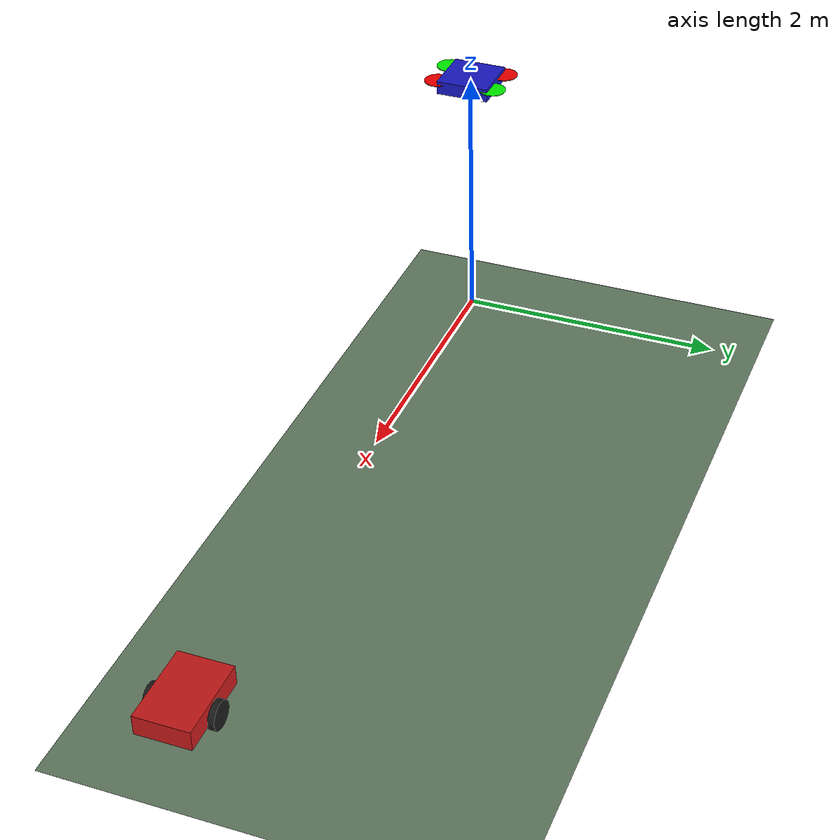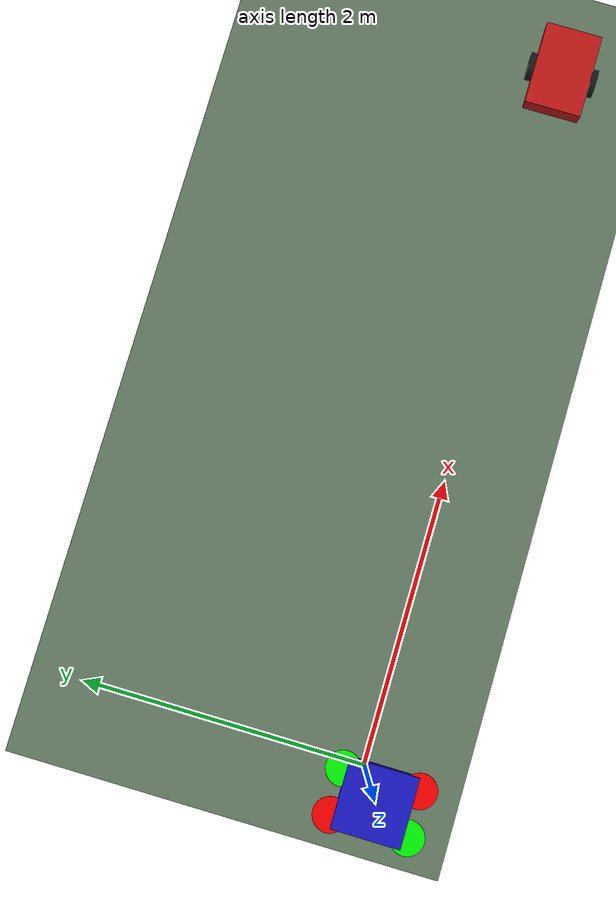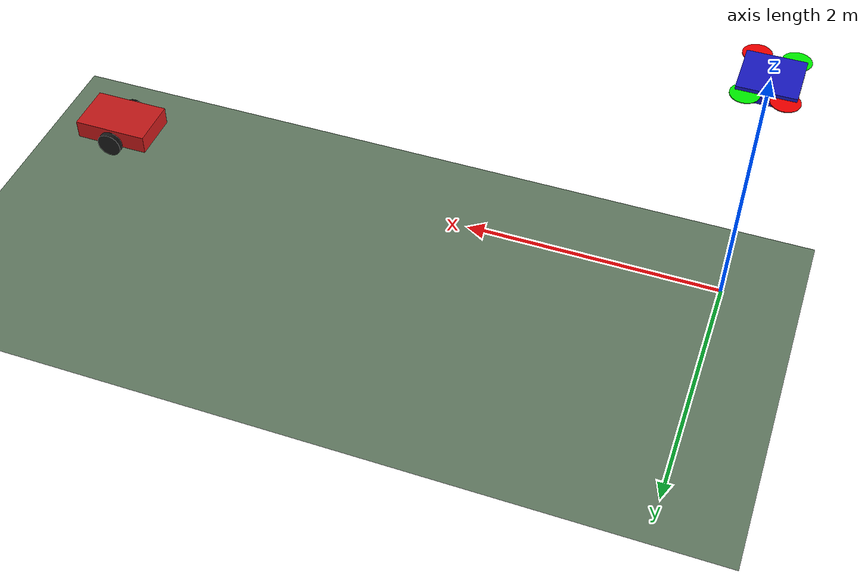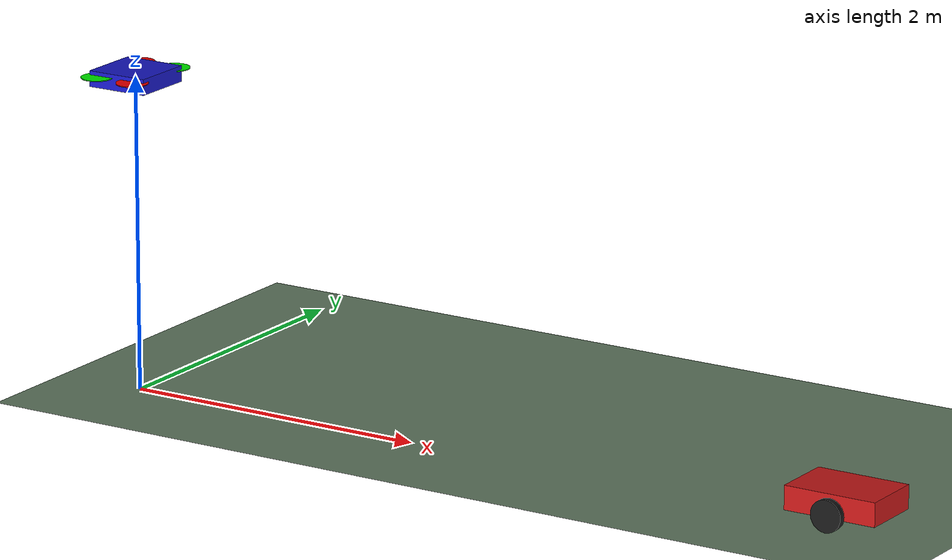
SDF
<?xml version="1.0" ?>
<sdf version="1.9">
  <world name="drone_tracker">

    <!-- Physics engine -->
    <physics name="1ms" type="ignored">
      <max_step_size>0.001</max_step_size>
      <real_time_factor>1.0</real_time_factor>
    </physics>

    <!-- Required plugins -->
    <plugin filename="gz-sim-physics-system"
            name="gz::sim::systems::Physics"/>
    <plugin filename="gz-sim-sensors-system"
            name="gz::sim::systems::Sensors">
      <render_engine>ogre</render_engine>
    </plugin>
    <plugin filename="gz-sim-scene-broadcaster-system"
            name="gz::sim::systems::SceneBroadcaster"/>
    <plugin filename="gz-sim-user-commands-system"
            name="gz::sim::systems::UserCommands"/>

    <!-- Sunlight -->
    <light name="sun" type="directional">
      <cast_shadows>true</cast_shadows>
      <pose>0 0 10 0 0 0</pose>
      <diffuse>0.8 0.8 0.8 1</diffuse>
      <specular>0.2 0.2 0.2 1</specular>
      <direction>-0.5 0.1 -0.9</direction>
    </light>

    <!-- Flat ground plane -->
    <model name="ground_plane">
      <static>true</static>
      <link name="link">
        <collision name="collision">
          <geometry><plane><normal>0 0 1</normal><size>100 100</size></plane></geometry>
        </collision>
        <visual name="visual">
          <geometry><plane><normal>0 0 1</normal><size>100 100</size></plane></geometry>
          <material>
            <ambient>0.4 0.5 0.4 1</ambient>
            <diffuse>0.4 0.5 0.4 1</diffuse>
          </material>
        </visual>
      </link>
    </model>

    <!-- Include the drone (spawned 2m above ground) -->
    <include>
      <uri>model://quadrotor</uri>
      <pose>0 0 2 0 0 0</pose>
    </include>

    <!-- Include the ground vehicle -->
    <include>
      <uri>model://ground_vehicle</uri>
      <pose>5 0 0.2 0 0 0</pose>
    </include>

  </world>
</sdf>

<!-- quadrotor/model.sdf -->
<sdf version="1.9">
  <model name="quadrotor">
    <self_collide>false</self_collide>

    <!-- ===== Main Body ===== -->
    <link name="base_link">
      <inertial>
        <mass>1.5</mass>
        <inertia>
          <ixx>0.029125</ixx><iyy>0.029125</iyy><izz>0.055225</izz>
          <ixy>0</ixy><ixz>0</ixz><iyz>0</iyz>
        </inertia>
      </inertial>
      <visual name="body_visual">
        <geometry><box><size>0.4 0.4 0.1</size></box></geometry>
        <material><ambient>0.1 0.1 0.8 1</ambient><diffuse>0.1 0.1 0.8 1</diffuse></material>
      </visual>
      <collision name="body_collision">
        <geometry><box><size>0.4 0.4 0.1</size></box></geometry>
      </collision>

      <!-- Downward-facing camera -->
      <sensor name="camera" type="camera">
        <pose>0 0 -0.06 0 1.5708 0</pose>
        <camera>
          <horizontal_fov>1.047</horizontal_fov>
          <image><width>640</width><height>480</height><format>R8G8B8</format></image>
          <clip><near>0.1</near><far>100</far></clip>
        </camera>
        <always_on>1</always_on>
        <update_rate>30</update_rate>
        <visualize>true</visualize>
        <topic>/drone/camera</topic>
      </sensor>
    </link>

    <!-- ===== Rotor 0: Front-Left (CCW) ===== -->
    <link name="rotor_0">
      <pose>0.13 0.22 0.023 0 0 0</pose>
      <inertial>
        <mass>0.025</mass>
        <inertia><ixx>9.75e-7</ixx><iyy>4.17e-5</iyy><izz>4.26e-5</izz></inertia>
      </inertial>
      <visual name="rotor_0_visual">
        <geometry><cylinder><radius>0.1</radius><length>0.005</length></cylinder></geometry>
        <material><ambient>0 1 0 1</ambient><diffuse>0 1 0 1</diffuse></material>
      </visual>
      <collision name="rotor_0_collision">
        <geometry><cylinder><radius>0.1</radius><length>0.005</length></cylinder></geometry>
      </collision>
    </link>
    <joint name="rotor_0_joint" type="revolute">
      <parent>base_link</parent><child>rotor_0</child>
      <axis>
        <xyz>0 0 1</xyz>
        <limit><lower>-1e+16</lower><upper>1e+16</upper></limit>
        <dynamics><damping>0.004</damping></dynamics>
      </axis>
    </joint>

    <!-- ===== Rotor 1: Back-Right (CCW) ===== -->
    <link name="rotor_1">
      <pose>-0.13 -0.22 0.023 0 0 0</pose>
      <inertial>
        <mass>0.025</mass>
        <inertia><ixx>9.75e-7</ixx><iyy>4.17e-5</iyy><izz>4.26e-5</izz></inertia>
      </inertial>
      <visual name="rotor_1_visual">
        <geometry><cylinder><radius>0.1</radius><length>0.005</length></cylinder></geometry>
        <material><ambient>0 1 0 1</ambient><diffuse>0 1 0 1</diffuse></material>
      </visual>
      <collision name="rotor_1_collision">
        <geometry><cylinder><radius>0.1</radius><length>0.005</length></cylinder></geometry>
      </collision>
    </link>
    <joint name="rotor_1_joint" type="revolute">
      <parent>base_link</parent><child>rotor_1</child>
      <axis>
        <xyz>0 0 1</xyz>
        <limit><lower>-1e+16</lower><upper>1e+16</upper></limit>
        <dynamics><damping>0.004</damping></dynamics>
      </axis>
    </joint>

    <!-- ===== Rotor 2: Front-Right (CW) ===== -->
    <link name="rotor_2">
      <pose>0.13 -0.22 0.023 0 0 0</pose>
      <inertial>
        <mass>0.025</mass>
        <inertia><ixx>9.75e-7</ixx><iyy>4.17e-5</iyy><izz>4.26e-5</izz></inertia>
      </inertial>
      <visual name="rotor_2_visual">
        <geometry><cylinder><radius>0.1</radius><length>0.005</length></cylinder></geometry>
        <material><ambient>1 0 0 1</ambient><diffuse>1 0 0 1</diffuse></material>
      </visual>
      <collision name="rotor_2_collision">
        <geometry><cylinder><radius>0.1</radius><length>0.005</length></cylinder></geometry>
      </collision>
    </link>
    <joint name="rotor_2_joint" type="revolute">
      <parent>base_link</parent><child>rotor_2</child>
      <axis>
        <xyz>0 0 1</xyz>
        <limit><lower>-1e+16</lower><upper>1e+16</upper></limit>
        <dynamics><damping>0.004</damping></dynamics>
      </axis>
    </joint>

    <!-- ===== Rotor 3: Back-Left (CW) ===== -->
    <link name="rotor_3">
      <pose>-0.13 0.22 0.023 0 0 0</pose>
      <inertial>
        <mass>0.025</mass>
        <inertia><ixx>9.75e-7</ixx><iyy>4.17e-5</iyy><izz>4.26e-5</izz></inertia>
      </inertial>
      <visual name="rotor_3_visual">
        <geometry><cylinder><radius>0.1</radius><length>0.005</length></cylinder></geometry>
        <material><ambient>1 0 0 1</ambient><diffuse>1 0 0 1</diffuse></material>
      </visual>
      <collision name="rotor_3_collision">
        <geometry><cylinder><radius>0.1</radius><length>0.005</length></cylinder></geometry>
      </collision>
    </link>
    <joint name="rotor_3_joint" type="revolute">
      <parent>base_link</parent><child>rotor_3</child>
      <axis>
        <xyz>0 0 1</xyz>
        <limit><lower>-1e+16</lower><upper>1e+16</upper></limit>
        <dynamics><damping>0.004</damping></dynamics>
      </axis>
    </joint>

    <!-- ===== Motor Model Plugins (one per rotor) ===== -->
    <plugin filename="gz-sim-multicopter-motor-model-system"
            name="gz::sim::systems::MulticopterMotorModel">
      <robotNamespace>drone</robotNamespace>
      <jointName>rotor_0_joint</jointName>
      <linkName>rotor_0</linkName>
      <turningDirection>ccw</turningDirection>
      <timeConstantUp>0.0125</timeConstantUp>
      <timeConstantDown>0.025</timeConstantDown>
      <maxRotVelocity>800</maxRotVelocity>
      <motorConstant>8.54858e-06</motorConstant>
      <momentConstant>0.06</momentConstant>
      <commandSubTopic>command/motor_speed</commandSubTopic>
      <motorNumber>0</motorNumber>
      <rotorDragCoefficient>8.06428e-05</rotorDragCoefficient>
      <rollingMomentCoefficient>1e-06</rollingMomentCoefficient>
      <motorSpeedPubTopic>motor_speed/0</motorSpeedPubTopic>
      <rotorVelocitySlowdownSim>10</rotorVelocitySlowdownSim>
    </plugin>

    <plugin filename="gz-sim-multicopter-motor-model-system"
            name="gz::sim::systems::MulticopterMotorModel">
      <robotNamespace>drone</robotNamespace>
      <jointName>rotor_1_joint</jointName>
      <linkName>rotor_1</linkName>
      <turningDirection>ccw</turningDirection>
      <timeConstantUp>0.0125</timeConstantUp>
      <timeConstantDown>0.025</timeConstantDown>
      <maxRotVelocity>800</maxRotVelocity>
      <motorConstant>8.54858e-06</motorConstant>
      <momentConstant>0.06</momentConstant>
      <commandSubTopic>command/motor_speed</commandSubTopic>
      <motorNumber>1</motorNumber>
      <rotorDragCoefficient>8.06428e-05</rotorDragCoefficient>
      <rollingMomentCoefficient>1e-06</rollingMomentCoefficient>
      <motorSpeedPubTopic>motor_speed/1</motorSpeedPubTopic>
      <rotorVelocitySlowdownSim>10</rotorVelocitySlowdownSim>
    </plugin>

    <plugin filename="gz-sim-multicopter-motor-model-system"
            name="gz::sim::systems::MulticopterMotorModel">
      <robotNamespace>drone</robotNamespace>
      <jointName>rotor_2_joint</jointName>
      <linkName>rotor_2</linkName>
      <turningDirection>cw</turningDirection>
      <timeConstantUp>0.0125</timeConstantUp>
      <timeConstantDown>0.025</timeConstantDown>
      <maxRotVelocity>800</maxRotVelocity>
      <motorConstant>8.54858e-06</motorConstant>
      <momentConstant>0.06</momentConstant>
      <commandSubTopic>command/motor_speed</commandSubTopic>
      <motorNumber>2</motorNumber>
      <rotorDragCoefficient>8.06428e-05</rotorDragCoefficient>
      <rollingMomentCoefficient>1e-06</rollingMomentCoefficient>
      <motorSpeedPubTopic>motor_speed/2</motorSpeedPubTopic>
      <rotorVelocitySlowdownSim>10</rotorVelocitySlowdownSim>
    </plugin>

    <plugin filename="gz-sim-multicopter-motor-model-system"
            name="gz::sim::systems::MulticopterMotorModel">
      <robotNamespace>drone</robotNamespace>
      <jointName>rotor_3_joint</jointName>
      <linkName>rotor_3</linkName>
      <turningDirection>cw</turningDirection>
      <timeConstantUp>0.0125</timeConstantUp>
      <timeConstantDown>0.025</timeConstantDown>
      <maxRotVelocity>800</maxRotVelocity>
      <motorConstant>8.54858e-06</motorConstant>
      <momentConstant>0.06</momentConstant>
      <commandSubTopic>command/motor_speed</commandSubTopic>
      <motorNumber>3</motorNumber>
      <rotorDragCoefficient>8.06428e-05</rotorDragCoefficient>
      <rollingMomentCoefficient>1e-06</rollingMomentCoefficient>
      <motorSpeedPubTopic>motor_speed/3</motorSpeedPubTopic>
      <rotorVelocitySlowdownSim>10</rotorVelocitySlowdownSim>
    </plugin>

    <!-- ===== Velocity Controller (with full rotorConfiguration) ===== -->
    <plugin filename="gz-sim-multicopter-control-system"
            name="gz::sim::systems::MulticopterVelocityControl">
      <robotNamespace>drone</robotNamespace>
      <commandSubTopic>cmd_vel</commandSubTopic>
      <enableSubTopic>enable</enableSubTopic>
      <comLinkName>base_link</comLinkName>
      <velocityGain>2.7 2.7 2.7</velocityGain>
      <attitudeGain>2 3 0.15</attitudeGain>
      <angularRateGain>0.4 0.52 0.18</angularRateGain>
      <maximumLinearAcceleration>2 2 2</maximumLinearAcceleration>
      <rotorConfiguration>
        <rotor>
          <jointName>rotor_0_joint</jointName>
          <forceConstant>8.54858e-06</forceConstant>
          <momentConstant>0.06</momentConstant>
          <direction>1</direction>
        </rotor>
        <rotor>
          <jointName>rotor_1_joint</jointName>
          <forceConstant>8.54858e-06</forceConstant>
          <momentConstant>0.06</momentConstant>
          <direction>1</direction>
        </rotor>
        <rotor>
          <jointName>rotor_2_joint</jointName>
          <forceConstant>8.54858e-06</forceConstant>
          <momentConstant>0.06</momentConstant>
          <direction>-1</direction>
        </rotor>
        <rotor>
          <jointName>rotor_3_joint</jointName>
          <forceConstant>8.54858e-06</forceConstant>
          <momentConstant>0.06</momentConstant>
          <direction>-1</direction>
        </rotor>
      </rotorConfiguration>
    </plugin>

  </model>
</sdf>

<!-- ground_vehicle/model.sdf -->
<sdf version="1.9">
  <model name="ground_vehicle">

    <link name="chassis">
      <inertial>
        <mass>5.0</mass>
        <inertia><ixx>0.13</ixx><iyy>0.30</iyy><izz>0.43</izz></inertia>
      </inertial>
      <visual name="chassis_visual">
        <geometry><box><size>0.6 0.4 0.15</size></box></geometry>
        <material><ambient>0.8 0.1 0.1 1</ambient><diffuse>0.8 0.1 0.1 1</diffuse></material>
      </visual>
      <collision name="chassis_collision">
        <geometry><box><size>0.6 0.4 0.15</size></box></geometry>
      </collision>
    </link>

    <!-- Left Wheel -->
    <link name="left_wheel">
      <pose>0 0.22 -0.05 -1.5707 0 0</pose>
      <inertial><mass>1.0</mass><inertia><ixx>0.043</ixx><iyy>0.043</iyy><izz>0.08</izz></inertia></inertial>
      <visual name="visual"><geometry><cylinder><radius>0.1</radius><length>0.05</length></cylinder></geometry>
        <material><ambient>0.1 0.1 0.1 1</ambient></material></visual>
      <collision name="collision"><geometry><cylinder><radius>0.1</radius><length>0.05</length></cylinder></geometry></collision>
    </link>

    <!-- Right Wheel -->
    <link name="right_wheel">
      <pose>0 -0.22 -0.05 -1.5707 0 0</pose>
      <inertial><mass>1.0</mass><inertia><ixx>0.043</ixx><iyy>0.043</iyy><izz>0.08</izz></inertia></inertial>
      <visual name="visual"><geometry><cylinder><radius>0.1</radius><length>0.05</length></cylinder></geometry>
        <material><ambient>0.1 0.1 0.1 1</ambient></material></visual>
      <collision name="collision"><geometry><cylinder><radius>0.1</radius><length>0.05</length></cylinder></geometry></collision>
    </link>

    <joint name="left_wheel_joint" type="revolute">
      <parent>chassis</parent><child>left_wheel</child>
      <axis><xyz>0 0 1</xyz></axis>
    </joint>

    <joint name="right_wheel_joint" type="revolute">
      <parent>chassis</parent><child>right_wheel</child>
      <axis><xyz>0 0 1</xyz></axis>
    </joint>

    <!-- Differential drive plugin - makes it drivable -->
    <plugin filename="gz-sim-diff-drive-system"
            name="gz::sim::systems::DiffDrive">
      <left_joint>left_wheel_joint</left_joint>
      <right_joint>right_wheel_joint</right_joint>
      <wheel_separation>0.44</wheel_separation>
      <wheel_radius>0.1</wheel_radius>
      <topic>/ground_vehicle/cmd_vel</topic>
      <odom_topic>/ground_vehicle/odom</odom_topic>
    </plugin>

  </model>
</sdf>
